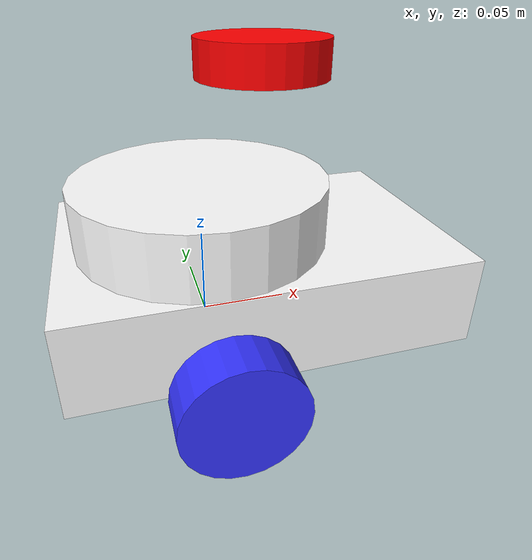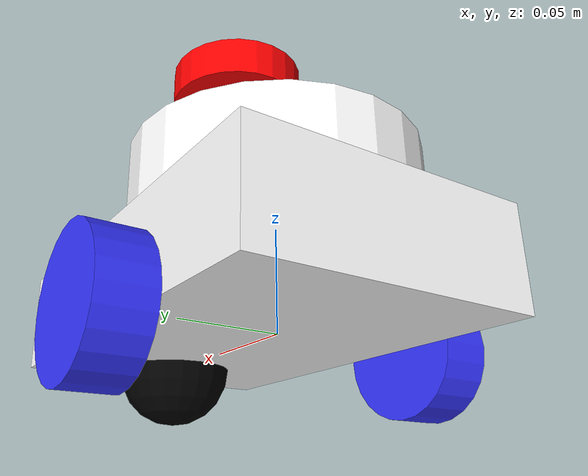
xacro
<?xml version="1.0"?>
<robot xmlns:xacro="http://www.ros.org/wiki/xacro" name="mapping_robot">

    <xacro:arg name="use_ros2_control" default="true"/>
    <xacro:arg name="sim_mode" default="false"/>

    <xacro:include filename="robot_core.xacro"/>

    <xacro:include filename="lidar.xacro"/>

    <xacro:if value="$(arg use_ros2_control)">
        <xacro:include filename="ros2_control.xacro" />
    </xacro:if>
    <xacro:unless value="$(arg use_ros2_control)">
        <xacro:include filename="gazebo_control.xacro" />
    </xacro:unless>

</robot>

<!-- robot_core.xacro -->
<robot xmlns:xacro="http://www.ros.org/wiki/xacro" >

    <xacro:include filename="inertial_macros.xacro"/>

    <material name="white">
        <color rgba="1 1 1 1"/>
    </material>

    <material name="orange">
        <color rgba="1 0.3 0.1 1"/>
    </material>

    <material name="blue">
        <color rgba="0.2 0.2 1 1"/>
    </material>

    <material name="black">
        <color rgba="0 0 0 1"/>
    </material>

    <material name="red">
        <color rgba="1 0 0 1"/>
    </material>

    <!-- BASE LINK -->

    <link name="base_link">

    </link>

    <!-- BASE_FOOTPRINT LINK-->
    <joint name="base_footprint_joint" type="fixed">
        <parent link="base_link"/>
        <child link="base_footprint"/>
        <origin xyz="0 0 0" rpy="0 0 0"/>
    </joint>

    <link name="base_footprint">
    </link>
    <!-- CHASSIS LINK -->

    <joint name="chassis_joint" type="fixed">
        <parent link="base_link"/>
        <child link="chassis"/>
        <origin xyz="-0.08 0 0"/>

    </joint>

    <link name="chassis">
        <visual>
            <origin xyz="0.1075 0 0.025" rpy="0 0 0"/>
            <geometry>
                <box size="0.215 0.14 0.05"/>
            </geometry>
            <material name="white"/>
        </visual>
        <collision>
            <origin xyz="0.1075 0 0.025" rpy="0 0 0"/>
            <geometry>
                <box size="0.215 0.14 0.05"/>
            </geometry>
        </collision>
        <xacro:inertial_box mass="0.5" x="0.215" y="0.14" z="0.05">
            <origin xyz="0.1075 0 0.025" rpy="0 0 0"/>
        </xacro:inertial_box>
    </link>

    <gazebo reference="chassis">
        <material>Gazebo/White</material>
    </gazebo>
    <!-- 2ND FLOOR -->

    <joint name="2nd_floor" type="fixed">
        <parent link="base_link"/>
        <child link="2nd_floor"/>
        <origin xyz="0 0 0.05"/>
    </joint>

    <link name="2nd_floor">
        <visual>
            <origin xyz="0 0 0.0175" rpy="0 0 0"/>
            <geometry>
                <cylinder radius="0.07" length="0.035"/>
            </geometry>
            <material name="white"/>
        </visual>
        <collision>
            <origin xyz="0 0 0.0175" rpy="0 0 0"/>
            <geometry>
                <cylinder radius="0.07" length="0.035"/>
            </geometry>
        </collision>
        <xacro:inertial_cylinder mass="0.4" length="0.034" radius="0.07">
            <origin xyz="0 0 0.0175" rpy="0 0 0"/>
        </xacro:inertial_cylinder>
    </link>

    <gazebo reference="2nd_floor">
        <material>Gazebo/White</material>
    </gazebo>

    <!-- LEFT WHEEL LINK -->

    <joint name="left wheel joint" type="continuous">
        <parent link="base_link"/>
        <child link="left_wheel"/>
        <origin xyz="0 0.085 0" rpy="-${pi/2} 0 0"/>
        <axis xyz="0 0 1"/>
    </joint>

    <link name="left_wheel">
        <visual>
            <geometry>
                <cylinder radius="0.0325" length="0.025"/>
            </geometry>
            <material name="blue"/>
        </visual>
        <collision>
            <geometry>
                <sphere radius="0.0325"/>
            </geometry>
        </collision>
        <xacro:inertial_cylinder mass="0.1" length="0.025" radius="0.0325">
            <origin xyz="0 0 0" rpy="0 0 0"/>
        </xacro:inertial_cylinder>
    </link>

    <gazebo reference="left_wheel">
        <material>Gazebo/Blue</material>
    </gazebo>

    <!-- RIGHT WHEEL LINK -->

    <joint name="right wheel joint" type="continuous">
        <parent link="base_link"/>
        <child link="right_wheel"/>
        <origin xyz="0 -0.085 0" rpy="${pi/2} 0 0"/>
        <axis xyz="0 0 -1"/>
    </joint>

    <link name="right_wheel">
        <visual>
            <geometry>
                <cylinder radius="0.0325" length="0.025"/>
            </geometry>
            <material name="blue"/>
        </visual>
        <collision>
            <geometry>
                <sphere radius="0.0325"/>
            </geometry>
        </collision>
        <xacro:inertial_cylinder mass="0.1" length="0.025" radius="0.0325">
            <origin xyz="0 0 0" rpy="0 0 0"/>
        </xacro:inertial_cylinder>
    </link>

    <gazebo reference="right_wheel">
        <material>Gazebo/Blue</material>
    </gazebo>
    <!-- CASTER WHEEL LINK -->

    <joint name="caster_wheel_joint" type="fixed">
        <parent link="chassis"/>
        <child link="caster_wheel"/>
        <origin xyz="0.18 0 0"/>
    </joint>

    <link name="caster_wheel">
        <visual>
            <geometry>
                <sphere radius="0.03"/>
            </geometry>
            <material name="black"/>
        </visual>
        <collision>
            <geometry>
                <sphere radius="0.03"/>
            </geometry>
        </collision>
        <xacro:inertial_sphere mass="0.3" radius="0.03">
            <origin xyz="0 0 0" rpy="0 0 0"/>
        </xacro:inertial_sphere>
    </link>

    <gazebo reference="caster_wheel">
        <material>Gazebo/Black</material>
        <mu1 value="0.00"/>
        <mu2 value="0.00"/>
    </gazebo>
</robot>

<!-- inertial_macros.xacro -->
<robot xmlns:xacro="http://www.ros.org/wiki/xacro" >

    <!-- Specify some standard inertial calculations https://en.wikipedia.org/wiki/List_of_moments_of_inertia -->
    <!-- These make use of xacro's mathematical functionality -->

    <xacro:macro name="inertial_sphere" params="mass radius *origin">
        <inertial>
            <xacro:insert_block name="origin"/>
            <mass value="${mass}" />
            <inertia ixx="${(2/5) * mass * (radius*radius)}" ixy="0.0" ixz="0.0"
                    iyy="${(2/5) * mass * (radius*radius)}" iyz="0.0"
                    izz="${(2/5) * mass * (radius*radius)}" />
        </inertial>
    </xacro:macro>

    <xacro:macro name="inertial_box" params="mass x y z *origin">
        <inertial>
            <xacro:insert_block name="origin"/>
            <mass value="${mass}" />
            <inertia ixx="${(1/12) * mass * (y*y+z*z)}" ixy="0.0" ixz="0.0"
                    iyy="${(1/12) * mass * (x*x+z*z)}" iyz="0.0"
                    izz="${(1/12) * mass * (x*x+y*y)}" />
        </inertial>
    </xacro:macro>

    <xacro:macro name="inertial_cylinder" params="mass length radius *origin">
        <inertial>
            <xacro:insert_block name="origin"/>
            <mass value="${mass}" />
            <inertia ixx="${(1/12) * mass * (3*radius*radius + length*length)}" ixy="0.0" ixz="0.0"
                    iyy="${(1/12) * mass * (3*radius*radius + length*length)}" iyz="0.0"
                    izz="${(1/2) * mass * (radius*radius)}" />
        </inertial>
    </xacro:macro>

</robot>

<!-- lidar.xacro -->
<robot xmlns:xacro="https://ww.ros.org/wiki/xacro">

    <joint name="laser_joint" type="fixed">
        <parent link="2nd_floor"/>
        <child link="lidar"/>
        <origin xyz="0.035 0 0.085" rpy="0 0 0"/>

    </joint>

    <link name="lidar">
        <visual>
            <origin xyz="0 0 0.01" rpy="0 0 0"/>
            <geometry>
                <cylinder radius="0.035" length="0.02"/>
            </geometry>
            <material name="red"/>
        </visual>
        <collision>
            <geometry>
                <cylinder radius="0.035" length="0.02"/>
            </geometry>
        </collision>
        <xacro:inertial_cylinder mass="0.5" length="0.02" radius="0.035">
            <origin xyz="0 0 0.01" rpy="0 0 0"/>
        </xacro:inertial_cylinder>
    </link>

    <gazebo reference="lidar">
        <material>Gazebo/Red</material>

        <sensor name="laser" type="ray">
            <pose> 0 0 0 0 0 0 </pose>
            <visualize>true</visualize>
            <update_rate>10</update_rate>
            <ray>
                <scan>
                    <horizontal>
                        <samples>360</samples>
                        <min_angle>-3.14</min_angle>
                        <max_angle>3.14</max_angle>
                    </horizontal>
                </scan>
                <range>
                    <min>0.3</min>
                    <max>12</max>
                </range>
            </ray>
            <plugin name="laser_controller" filename="libgazebo_ros_ray_sensor.so">
                <ros>
                    <argument>~/out:=scan</argument>
                </ros>
                <output_type>sensor_msgs/LaserScan</output_type>
                <frame_name>lidar</frame_name>
            </plugin>
        </sensor>
    </gazebo>

</robot>
